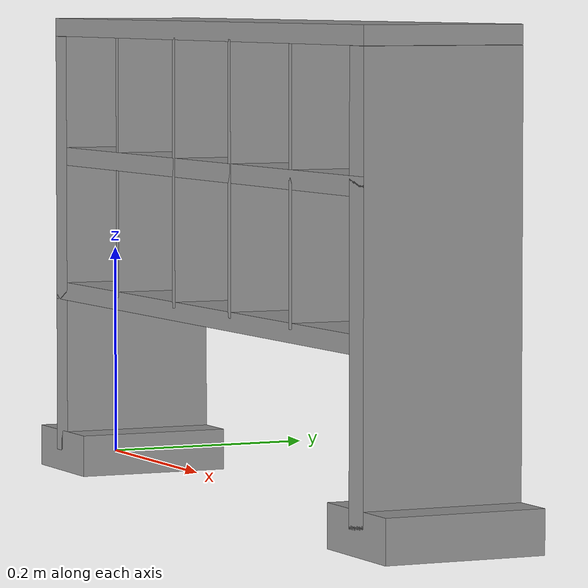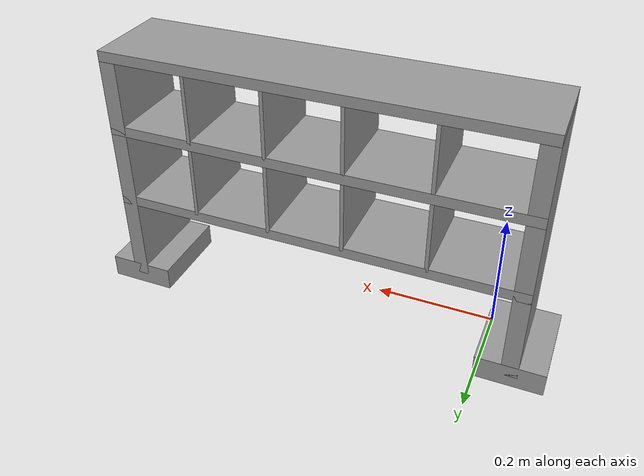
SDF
<?xml version='1.0'?>
<sdf version='1.6'>
  <model name='Rack_1.0'>
    <link name='link_0'>
      <pose frame=''>-0.051424 0.038969 -0.003686 0 -0 0</pose>
      <inertial>
        <mass>5</mass>
        <inertia>
          <ixx>0.166667</ixx>
          <ixy>0</ixy>
          <ixz>0</ixz>
          <iyy>0.166667</iyy>
          <iyz>0</iyz>
          <izz>0.166667</izz>
        </inertia>
        <pose frame=''>0 0 0 0 -0 0</pose>
      </inertial>
      <self_collide>0</self_collide>
      <kinematic>0</kinematic>
      <visual name='visual'>
        <pose frame=''>0 0 0 0 -0 0</pose>
        <geometry>
          <box>
            <size>0.1125 0.15 0.04</size>
          </box>
        </geometry>
        <material>
          <lighting>1</lighting>
          <script>
            <uri>file://media/materials/scripts/gazebo.material</uri>
            <name>Gazebo/Grey</name>
          </script>
          <shader type='pixel'>
            <normal_map>__default__</normal_map>
          </shader>
          <ambient>0 0 0 1</ambient>
          <diffuse>0.7 0.7 0.7 1</diffuse>
          <specular>0.01 0.01 0.01 1</specular>
          <emissive>0 0 0 1</emissive>
        </material>
        <transparency>0</transparency>
        <cast_shadows>1</cast_shadows>
      </visual>
      <collision name='collision'>
        <laser_retro>0</laser_retro>
        <max_contacts>10</max_contacts>
        <pose frame=''>0 0 0 0 -0 0</pose>
        <geometry>
          <box>
            <size>0.1125 0.15 0.04</size>
          </box>
        </geometry>
        <surface>
          <friction>
            <ode>
              <mu>1</mu>
              <mu2>1</mu2>
              <fdir1>0 0 0</fdir1>
              <slip1>0</slip1>
              <slip2>0</slip2>
            </ode>
            <torsional>
              <coefficient>1</coefficient>
              <patch_radius>0</patch_radius>
              <surface_radius>0</surface_radius>
              <use_patch_radius>1</use_patch_radius>
              <ode>
                <slip>0</slip>
              </ode>
            </torsional>
          </friction>
          <bounce>
            <restitution_coefficient>0</restitution_coefficient>
            <threshold>1e+06</threshold>
          </bounce>
          <contact>
            <collide_without_contact>0</collide_without_contact>
            <collide_without_contact_bitmask>1</collide_without_contact_bitmask>
            <collide_bitmask>1</collide_bitmask>
            <ode>
              <soft_cfm>0</soft_cfm>
              <soft_erp>0.2</soft_erp>
              <kp>1e+13</kp>
              <kd>1</kd>
              <max_vel>0.01</max_vel>
              <min_depth>0</min_depth>
            </ode>
            <bullet>
              <split_impulse>1</split_impulse>
              <split_impulse_penetration_threshold>-0.01</split_impulse_penetration_threshold>
              <soft_cfm>0</soft_cfm>
              <soft_erp>0.2</soft_erp>
              <kp>1e+13</kp>
              <kd>1</kd>
            </bullet>
          </contact>
        </surface>
      </collision>
    </link>
    <link name='link_0_clone'>
      <pose frame=''>0.617326 0.038969 -0.003686 0 -0 0</pose>
      <inertial>
        <mass>5</mass>
        <inertia>
          <ixx>0.166667</ixx>
          <ixy>0</ixy>
          <ixz>0</ixz>
          <iyy>0.166667</iyy>
          <iyz>0</iyz>
          <izz>0.166667</izz>
        </inertia>
        <pose frame=''>0 0 0 0 -0 0</pose>
      </inertial>
      <self_collide>0</self_collide>
      <kinematic>0</kinematic>
      <visual name='visual'>
        <pose frame=''>0 0 0 0 -0 0</pose>
        <geometry>
          <box>
            <size>0.1125 0.15 0.04</size>
          </box>
        </geometry>
        <material>
          <lighting>1</lighting>
          <script>
            <uri>file://media/materials/scripts/gazebo.material</uri>
            <name>Gazebo/Grey</name>
          </script>
          <shader type='pixel'>
            <normal_map>__default__</normal_map>
          </shader>
          <ambient>0 0 0 1</ambient>
          <diffuse>0.7 0.7 0.7 1</diffuse>
          <specular>0.01 0.01 0.01 1</specular>
          <emissive>0 0 0 1</emissive>
        </material>
        <transparency>0</transparency>
        <cast_shadows>1</cast_shadows>
      </visual>
      <collision name='collision'>
        <laser_retro>0</laser_retro>
        <max_contacts>10</max_contacts>
        <pose frame=''>0 0 0 0 -0 0</pose>
        <geometry>
          <box>
            <size>0.1125 0.15 0.04</size>
          </box>
        </geometry>
        <surface>
          <friction>
            <ode>
              <mu>1</mu>
              <mu2>1</mu2>
              <fdir1>0 0 0</fdir1>
              <slip1>0</slip1>
              <slip2>0</slip2>
            </ode>
            <torsional>
              <coefficient>1</coefficient>
              <patch_radius>0</patch_radius>
              <surface_radius>0</surface_radius>
              <use_patch_radius>1</use_patch_radius>
              <ode>
                <slip>0</slip>
              </ode>
            </torsional>
          </friction>
          <bounce>
            <restitution_coefficient>0</restitution_coefficient>
            <threshold>1e+06</threshold>
          </bounce>
          <contact>
            <collide_without_contact>0</collide_without_contact>
            <collide_without_contact_bitmask>1</collide_without_contact_bitmask>
            <collide_bitmask>1</collide_bitmask>
            <ode>
              <soft_cfm>0</soft_cfm>
              <soft_erp>0.2</soft_erp>
              <kp>1e+13</kp>
              <kd>1</kd>
              <max_vel>0.01</max_vel>
              <min_depth>0</min_depth>
            </ode>
            <bullet>
              <split_impulse>1</split_impulse>
              <split_impulse_penetration_threshold>-0.01</split_impulse_penetration_threshold>
              <soft_cfm>0</soft_cfm>
              <soft_erp>0.2</soft_erp>
              <kp>1e+13</kp>
              <kd>1</kd>
            </bullet>
          </contact>
        </surface>
      </collision>
    </link>
    <link name='link_0_clone_0'>
      <pose frame=''>0.282951 0.038969 0.415314 0 -0 0</pose>
      <inertial>
        <mass>1</mass>
        <inertia>
          <ixx>0.166667</ixx>
          <ixy>0</ixy>
          <ixz>0</ixz>
          <iyy>0.166667</iyy>
          <iyz>0</iyz>
          <izz>0.166667</izz>
        </inertia>
        <pose frame=''>0 0 0 0 -0 0</pose>
      </inertial>
      <self_collide>0</self_collide>
      <kinematic>0</kinematic>
      <visual name='visual'>
        <pose frame=''>0 0 0 0 -0 0</pose>
        <geometry>
          <box>
            <size>0.696 0.15 0.0175</size>
          </box>
        </geometry>
        <material>
          <lighting>1</lighting>
          <script>
            <uri>file://media/materials/scripts/gazebo.material</uri>
            <name>Gazebo/Grey</name>
          </script>
          <shader type='pixel'>
            <normal_map>__default__</normal_map>
          </shader>
          <ambient>0 0 0 1</ambient>
          <diffuse>0.7 0.7 0.7 1</diffuse>
          <specular>0.01 0.01 0.01 1</specular>
          <emissive>0 0 0 1</emissive>
        </material>
        <transparency>0</transparency>
        <cast_shadows>1</cast_shadows>
      </visual>
      <collision name='collision'>
        <laser_retro>0</laser_retro>
        <max_contacts>10</max_contacts>
        <pose frame=''>0 0 0 0 -0 0</pose>
        <geometry>
          <box>
            <size>0.696 0.15 0.0175</size>
          </box>
        </geometry>
        <surface>
          <friction>
            <ode>
              <mu>1</mu>
              <mu2>1</mu2>
              <fdir1>0 0 0</fdir1>
              <slip1>0</slip1>
              <slip2>0</slip2>
            </ode>
            <torsional>
              <coefficient>1</coefficient>
              <patch_radius>0</patch_radius>
              <surface_radius>0</surface_radius>
              <use_patch_radius>1</use_patch_radius>
              <ode>
                <slip>0</slip>
              </ode>
            </torsional>
          </friction>
          <bounce>
            <restitution_coefficient>0</restitution_coefficient>
            <threshold>1e+06</threshold>
          </bounce>
          <contact>
            <collide_without_contact>0</collide_without_contact>
            <collide_without_contact_bitmask>1</collide_without_contact_bitmask>
            <collide_bitmask>1</collide_bitmask>
            <ode>
              <soft_cfm>0</soft_cfm>
              <soft_erp>0.2</soft_erp>
              <kp>1e+13</kp>
              <kd>1</kd>
              <max_vel>0.01</max_vel>
              <min_depth>0</min_depth>
            </ode>
            <bullet>
              <split_impulse>1</split_impulse>
              <split_impulse_penetration_threshold>-0.01</split_impulse_penetration_threshold>
              <soft_cfm>0</soft_cfm>
              <soft_erp>0.2</soft_erp>
              <kp>1e+13</kp>
              <kd>1</kd>
            </bullet>
          </contact>
        </surface>
      </collision>
    </link>
    <link name='link_0_clone_0_clone'>
      <pose frame=''>0.282951 0.038969 0.288714 0 -0 0</pose>
      <inertial>
        <mass>1</mass>
        <inertia>
          <ixx>0.166667</ixx>
          <ixy>0</ixy>
          <ixz>0</ixz>
          <iyy>0.166667</iyy>
          <iyz>0</iyz>
          <izz>0.166667</izz>
        </inertia>
        <pose frame=''>0 0 0 0 -0 0</pose>
      </inertial>
      <self_collide>0</self_collide>
      <kinematic>0</kinematic>
      <visual name='visual'>
        <pose frame=''>0 0 0 0 -0 0</pose>
        <geometry>
          <box>
            <size>0.696 0.15 0.0175</size>
          </box>
        </geometry>
        <material>
          <lighting>1</lighting>
          <script>
            <uri>file://media/materials/scripts/gazebo.material</uri>
            <name>Gazebo/Grey</name>
          </script>
          <shader type='pixel'>
            <normal_map>__default__</normal_map>
          </shader>
          <ambient>0 0 0 1</ambient>
          <diffuse>0.7 0.7 0.7 1</diffuse>
          <specular>0.01 0.01 0.01 1</specular>
          <emissive>0 0 0 1</emissive>
        </material>
        <transparency>0</transparency>
        <cast_shadows>1</cast_shadows>
      </visual>
      <collision name='collision'>
        <laser_retro>0</laser_retro>
        <max_contacts>10</max_contacts>
        <pose frame=''>0 0 0 0 -0 0</pose>
        <geometry>
          <box>
            <size>0.696 0.15 0.0175</size>
          </box>
        </geometry>
        <surface>
          <friction>
            <ode>
              <mu>1</mu>
              <mu2>1</mu2>
              <fdir1>0 0 0</fdir1>
              <slip1>0</slip1>
              <slip2>0</slip2>
            </ode>
            <torsional>
              <coefficient>1</coefficient>
              <patch_radius>0</patch_radius>
              <surface_radius>0</surface_radius>
              <use_patch_radius>1</use_patch_radius>
              <ode>
                <slip>0</slip>
              </ode>
            </torsional>
          </friction>
          <bounce>
            <restitution_coefficient>0</restitution_coefficient>
            <threshold>1e+06</threshold>
          </bounce>
          <contact>
            <collide_without_contact>0</collide_without_contact>
            <collide_without_contact_bitmask>1</collide_without_contact_bitmask>
            <collide_bitmask>1</collide_bitmask>
            <ode>
              <soft_cfm>0</soft_cfm>
              <soft_erp>0.2</soft_erp>
              <kp>1e+13</kp>
              <kd>1</kd>
              <max_vel>0.01</max_vel>
              <min_depth>0</min_depth>
            </ode>
            <bullet>
              <split_impulse>1</split_impulse>
              <split_impulse_penetration_threshold>-0.01</split_impulse_penetration_threshold>
              <soft_cfm>0</soft_cfm>
              <soft_erp>0.2</soft_erp>
              <kp>1e+13</kp>
              <kd>1</kd>
            </bullet>
          </contact>
        </surface>
      </collision>
    </link>
    <link name='link_0_clone_0_clone_0'>
      <pose frame=''>0.282951 0.038969 0.155414 0 -0 0</pose>
      <inertial>
        <mass>1</mass>
        <inertia>
          <ixx>0.166667</ixx>
          <ixy>0</ixy>
          <ixz>0</ixz>
          <iyy>0.166667</iyy>
          <iyz>0</iyz>
          <izz>0.166667</izz>
        </inertia>
        <pose frame=''>0 0 0 0 -0 0</pose>
      </inertial>
      <self_collide>0</self_collide>
      <kinematic>0</kinematic>
      <visual name='visual'>
        <pose frame=''>0 0 0 0 -0 0</pose>
        <geometry>
          <box>
            <size>0.696 0.15 0.0175</size>
          </box>
        </geometry>
        <material>
          <lighting>1</lighting>
          <script>
            <uri>file://media/materials/scripts/gazebo.material</uri>
            <name>Gazebo/Grey</name>
          </script>
          <shader type='pixel'>
            <normal_map>__default__</normal_map>
          </shader>
          <ambient>0 0 0 1</ambient>
          <diffuse>0.7 0.7 0.7 1</diffuse>
          <specular>0.01 0.01 0.01 1</specular>
          <emissive>0 0 0 1</emissive>
        </material>
        <transparency>0</transparency>
        <cast_shadows>1</cast_shadows>
      </visual>
      <collision name='collision'>
        <laser_retro>0</laser_retro>
        <max_contacts>10</max_contacts>
        <pose frame=''>0 0 0 0 -0 0</pose>
        <geometry>
          <box>
            <size>0.696 0.15 0.0175</size>
          </box>
        </geometry>
        <surface>
          <friction>
            <ode>
              <mu>1</mu>
              <mu2>1</mu2>
              <fdir1>0 0 0</fdir1>
              <slip1>0</slip1>
              <slip2>0</slip2>
            </ode>
            <torsional>
              <coefficient>1</coefficient>
              <patch_radius>0</patch_radius>
              <surface_radius>0</surface_radius>
              <use_patch_radius>1</use_patch_radius>
              <ode>
                <slip>0</slip>
              </ode>
            </torsional>
          </friction>
          <bounce>
            <restitution_coefficient>0</restitution_coefficient>
            <threshold>1e+06</threshold>
          </bounce>
          <contact>
            <collide_without_contact>0</collide_without_contact>
            <collide_without_contact_bitmask>1</collide_without_contact_bitmask>
            <collide_bitmask>1</collide_bitmask>
            <ode>
              <soft_cfm>0</soft_cfm>
              <soft_erp>0.2</soft_erp>
              <kp>1e+13</kp>
              <kd>1</kd>
              <max_vel>0.01</max_vel>
              <min_depth>0</min_depth>
            </ode>
            <bullet>
              <split_impulse>1</split_impulse>
              <split_impulse_penetration_threshold>-0.01</split_impulse_penetration_threshold>
              <soft_cfm>0</soft_cfm>
              <soft_erp>0.2</soft_erp>
              <kp>1e+13</kp>
              <kd>1</kd>
            </bullet>
          </contact>
        </surface>
      </collision>
    </link>
    <link name='link_1'>
      <pose frame=''>-0.051424 0.038969 0.201313 0 -0 0</pose>
      <inertial>
        <mass>1</mass>
        <inertia>
          <ixx>0.166667</ixx>
          <ixy>0</ixy>
          <ixz>0</ixz>
          <iyy>0.166667</iyy>
          <iyz>0</iyz>
          <izz>0.166667</izz>
        </inertia>
        <pose frame=''>0 0 0 0 -0 0</pose>
      </inertial>
      <self_collide>0</self_collide>
      <kinematic>0</kinematic>
      <visual name='visual'>
        <pose frame=''>0 0 0 0 -0 0</pose>
        <geometry>
          <box>
            <size>0.0275 0.15 0.41</size>
          </box>
        </geometry>
        <material>
          <lighting>1</lighting>
          <script>
            <uri>file://media/materials/scripts/gazebo.material</uri>
            <name>Gazebo/Grey</name>
          </script>
          <shader type='pixel'>
            <normal_map>__default__</normal_map>
          </shader>
          <ambient>0 0 0 1</ambient>
          <diffuse>0.7 0.7 0.7 1</diffuse>
          <specular>0.01 0.01 0.01 1</specular>
          <emissive>0 0 0 1</emissive>
        </material>
        <transparency>0</transparency>
        <cast_shadows>1</cast_shadows>
      </visual>
      <collision name='collision'>
        <laser_retro>0</laser_retro>
        <max_contacts>10</max_contacts>
        <pose frame=''>0 0 0 0 -0 0</pose>
        <geometry>
          <box>
            <size>0.0275 0.15 0.41</size>
          </box>
        </geometry>
        <surface>
          <friction>
            <ode>
              <mu>1</mu>
              <mu2>1</mu2>
              <fdir1>0 0 0</fdir1>
              <slip1>0</slip1>
              <slip2>0</slip2>
            </ode>
            <torsional>
              <coefficient>1</coefficient>
              <patch_radius>0</patch_radius>
              <surface_radius>0</surface_radius>
              <use_patch_radius>1</use_patch_radius>
              <ode>
                <slip>0</slip>
              </ode>
            </torsional>
          </friction>
          <bounce>
            <restitution_coefficient>0</restitution_coefficient>
            <threshold>1e+06</threshold>
          </bounce>
          <contact>
            <collide_without_contact>0</collide_without_contact>
            <collide_without_contact_bitmask>1</collide_without_contact_bitmask>
            <collide_bitmask>1</collide_bitmask>
            <ode>
              <soft_cfm>0</soft_cfm>
              <soft_erp>0.2</soft_erp>
              <kp>1e+13</kp>
              <kd>1</kd>
              <max_vel>0.01</max_vel>
              <min_depth>0</min_depth>
            </ode>
            <bullet>
              <split_impulse>1</split_impulse>
              <split_impulse_penetration_threshold>-0.01</split_impulse_penetration_threshold>
              <soft_cfm>0</soft_cfm>
              <soft_erp>0.2</soft_erp>
              <kp>1e+13</kp>
              <kd>1</kd>
            </bullet>
          </contact>
        </surface>
      </collision>
    </link>
    <link name='link_1_clone'>
      <pose frame=''>0.617326 0.038969 0.201314 0 -0 0</pose>
      <inertial>
        <mass>1</mass>
        <inertia>
          <ixx>0.166667</ixx>
          <ixy>0</ixy>
          <ixz>0</ixz>
          <iyy>0.166667</iyy>
          <iyz>0</iyz>
          <izz>0.166667</izz>
        </inertia>
        <pose frame=''>0 0 0 0 -0 0</pose>
      </inertial>
      <self_collide>0</self_collide>
      <kinematic>0</kinematic>
      <visual name='visual'>
        <pose frame=''>0 0 0 0 -0 0</pose>
        <geometry>
          <box>
            <size>0.0275 0.15 0.41</size>
          </box>
        </geometry>
        <material>
          <lighting>1</lighting>
          <script>
            <uri>file://media/materials/scripts/gazebo.material</uri>
            <name>Gazebo/Grey</name>
          </script>
          <shader type='pixel'>
            <normal_map>__default__</normal_map>
          </shader>
          <ambient>0 0 0 1</ambient>
          <diffuse>0.7 0.7 0.7 1</diffuse>
          <specular>0.01 0.01 0.01 1</specular>
          <emissive>0 0 0 1</emissive>
        </material>
        <transparency>0</transparency>
        <cast_shadows>1</cast_shadows>
      </visual>
      <collision name='collision'>
        <laser_retro>0</laser_retro>
        <max_contacts>10</max_contacts>
        <pose frame=''>0 0 0 0 -0 0</pose>
        <geometry>
          <box>
            <size>0.0275 0.15 0.41</size>
          </box>
        </geometry>
        <surface>
          <friction>
            <ode>
              <mu>1</mu>
              <mu2>1</mu2>
              <fdir1>0 0 0</fdir1>
              <slip1>0</slip1>
              <slip2>0</slip2>
            </ode>
            <torsional>
              <coefficient>1</coefficient>
              <patch_radius>0</patch_radius>
              <surface_radius>0</surface_radius>
              <use_patch_radius>1</use_patch_radius>
              <ode>
                <slip>0</slip>
              </ode>
            </torsional>
          </friction>
          <bounce>
            <restitution_coefficient>0</restitution_coefficient>
            <threshold>1e+06</threshold>
          </bounce>
          <contact>
            <collide_without_contact>0</collide_without_contact>
            <collide_without_contact_bitmask>1</collide_without_contact_bitmask>
            <collide_bitmask>1</collide_bitmask>
            <ode>
              <soft_cfm>0</soft_cfm>
              <soft_erp>0.2</soft_erp>
              <kp>1e+13</kp>
              <kd>1</kd>
              <max_vel>0.01</max_vel>
              <min_depth>0</min_depth>
            </ode>
            <bullet>
              <split_impulse>1</split_impulse>
              <split_impulse_penetration_threshold>-0.01</split_impulse_penetration_threshold>
              <soft_cfm>0</soft_cfm>
              <soft_erp>0.2</soft_erp>
              <kp>1e+13</kp>
              <kd>1</kd>
            </bullet>
          </contact>
        </surface>
      </collision>
    </link>
    <link name='link_6'>
      <pose frame=''>0.093076 0.038969 0.28345 0 -0 0</pose>
      <inertial>
        <mass>1</mass>
        <inertia>
          <ixx>0.166667</ixx>
          <ixy>0</ixy>
          <ixz>0</ixz>
          <iyy>0.166667</iyy>
          <iyz>0</iyz>
          <izz>0.166667</izz>
        </inertia>
        <pose frame=''>0 0 0 0 -0 0</pose>
      </inertial>
      <self_collide>0</self_collide>
      <kinematic>0</kinematic>
      <visual name='visual'>
        <pose frame=''>0 0 0 0 -0 0</pose>
        <geometry>
          <box>
            <size>0.006 0.15 0.25</size>
          </box>
        </geometry>
        <material>
          <lighting>1</lighting>
          <script>
            <uri>file://media/materials/scripts/gazebo.material</uri>
            <name>Gazebo/Grey</name>
          </script>
          <shader type='pixel'>
            <normal_map>__default__</normal_map>
          </shader>
          <ambient>1 1 1 1</ambient>
          <diffuse>0.7 0.7 0.7 1</diffuse>
          <specular>0.01 0.01 0.01 1</specular>
          <emissive>0 0 0 1</emissive>
        </material>
        <transparency>0</transparency>
        <cast_shadows>1</cast_shadows>
      </visual>
      <collision name='collision'>
        <laser_retro>0</laser_retro>
        <max_contacts>10</max_contacts>
        <pose frame=''>0 0 0 0 -0 0</pose>
        <geometry>
          <box>
            <size>0.006 0.15 0.25</size>
          </box>
        </geometry>
        <surface>
          <friction>
            <ode>
              <mu>1</mu>
              <mu2>1</mu2>
              <fdir1>0 0 0</fdir1>
              <slip1>0</slip1>
              <slip2>0</slip2>
            </ode>
            <torsional>
              <coefficient>1</coefficient>
              <patch_radius>0</patch_radius>
              <surface_radius>0</surface_radius>
              <use_patch_radius>1</use_patch_radius>
              <ode>
                <slip>0</slip>
              </ode>
            </torsional>
          </friction>
          <bounce>
            <restitution_coefficient>0</restitution_coefficient>
            <threshold>1e+06</threshold>
          </bounce>
          <contact>
            <collide_without_contact>0</collide_without_contact>
            <collide_without_contact_bitmask>1</collide_without_contact_bitmask>
            <collide_bitmask>1</collide_bitmask>
            <ode>
              <soft_cfm>0</soft_cfm>
              <soft_erp>0.2</soft_erp>
              <kp>1e+13</kp>
              <kd>1</kd>
              <max_vel>0.01</max_vel>
              <min_depth>0</min_depth>
            </ode>
            <bullet>
              <split_impulse>1</split_impulse>
              <split_impulse_penetration_threshold>-0.01</split_impulse_penetration_threshold>
              <soft_cfm>0</soft_cfm>
              <soft_erp>0.2</soft_erp>
              <kp>1e+13</kp>
              <kd>1</kd>
            </bullet>
          </contact>
        </surface>
      </collision>
    </link>
    <link name='link_6_clone'>
      <pose frame=''>0.229217 0.038969 0.28345 0 -0 0</pose>
      <inertial>
        <mass>1</mass>
        <inertia>
          <ixx>0.166667</ixx>
          <ixy>0</ixy>
          <ixz>0</ixz>
          <iyy>0.166667</iyy>
          <iyz>0</iyz>
          <izz>0.166667</izz>
        </inertia>
        <pose frame=''>0 0 0 0 -0 0</pose>
      </inertial>
      <self_collide>0</self_collide>
      <kinematic>0</kinematic>
      <visual name='visual'>
        <pose frame=''>0 0 0 0 -0 0</pose>
        <geometry>
          <box>
            <size>0.006 0.15 0.25</size>
          </box>
        </geometry>
        <material>
          <lighting>1</lighting>
          <script>
            <uri>file://media/materials/scripts/gazebo.material</uri>
            <name>Gazebo/Grey</name>
          </script>
          <shader type='pixel'>
            <normal_map>__default__</normal_map>
          </shader>
          <ambient>1 1 1 1</ambient>
          <diffuse>0.7 0.7 0.7 1</diffuse>
          <specular>0.01 0.01 0.01 1</specular>
          <emissive>0 0 0 1</emissive>
        </material>
        <transparency>0</transparency>
        <cast_shadows>1</cast_shadows>
      </visual>
      <collision name='collision'>
        <laser_retro>0</laser_retro>
        <max_contacts>10</max_contacts>
        <pose frame=''>0 0 0 0 -0 0</pose>
        <geometry>
          <box>
            <size>0.006 0.15 0.25</size>
          </box>
        </geometry>
        <surface>
          <friction>
            <ode>
              <mu>1</mu>
              <mu2>1</mu2>
              <fdir1>0 0 0</fdir1>
              <slip1>0</slip1>
              <slip2>0</slip2>
            </ode>
            <torsional>
              <coefficient>1</coefficient>
              <patch_radius>0</patch_radius>
              <surface_radius>0</surface_radius>
              <use_patch_radius>1</use_patch_radius>
              <ode>
                <slip>0</slip>
              </ode>
            </torsional>
          </friction>
          <bounce>
            <restitution_coefficient>0</restitution_coefficient>
            <threshold>1e+06</threshold>
          </bounce>
          <contact>
            <collide_without_contact>0</collide_without_contact>
            <collide_without_contact_bitmask>1</collide_without_contact_bitmask>
            <collide_bitmask>1</collide_bitmask>
            <ode>
              <soft_cfm>0</soft_cfm>
              <soft_erp>0.2</soft_erp>
              <kp>1e+13</kp>
              <kd>1</kd>
              <max_vel>0.01</max_vel>
              <min_depth>0</min_depth>
            </ode>
            <bullet>
              <split_impulse>1</split_impulse>
              <split_impulse_penetration_threshold>-0.01</split_impulse_penetration_threshold>
              <soft_cfm>0</soft_cfm>
              <soft_erp>0.2</soft_erp>
              <kp>1e+13</kp>
              <kd>1</kd>
            </bullet>
          </contact>
        </surface>
      </collision>
    </link>
    <link name='link_6_clone_0'>
      <pose frame=''>0.355533 0.038969 0.28345 0 -0 0</pose>
      <inertial>
        <mass>1</mass>
        <inertia>
          <ixx>0.166667</ixx>
          <ixy>0</ixy>
          <ixz>0</ixz>
          <iyy>0.166667</iyy>
          <iyz>0</iyz>
          <izz>0.166667</izz>
        </inertia>
        <pose frame=''>0 0 0 0 -0 0</pose>
      </inertial>
      <self_collide>0</self_collide>
      <kinematic>0</kinematic>
      <visual name='visual'>
        <pose frame=''>0 0 0 0 -0 0</pose>
        <geometry>
          <box>
            <size>0.006 0.15 0.25</size>
          </box>
        </geometry>
        <material>
          <lighting>1</lighting>
          <script>
            <uri>file://media/materials/scripts/gazebo.material</uri>
            <name>Gazebo/Grey</name>
          </script>
          <shader type='pixel'>
            <normal_map>__default__</normal_map>
          </shader>
          <ambient>1 1 1 1</ambient>
          <diffuse>0.7 0.7 0.7 1</diffuse>
          <specular>0.01 0.01 0.01 1</specular>
          <emissive>0 0 0 1</emissive>
        </material>
        <transparency>0</transparency>
        <cast_shadows>1</cast_shadows>
      </visual>
      <collision name='collision'>
        <laser_retro>0</laser_retro>
        <max_contacts>10</max_contacts>
        <pose frame=''>0 0 0 0 -0 0</pose>
        <geometry>
          <box>
            <size>0.006 0.15 0.25</size>
          </box>
        </geometry>
        <surface>
          <friction>
            <ode>
              <mu>1</mu>
              <mu2>1</mu2>
              <fdir1>0 0 0</fdir1>
              <slip1>0</slip1>
              <slip2>0</slip2>
            </ode>
            <torsional>
              <coefficient>1</coefficient>
              <patch_radius>0</patch_radius>
              <surface_radius>0</surface_radius>
              <use_patch_radius>1</use_patch_radius>
              <ode>
                <slip>0</slip>
              </ode>
            </torsional>
          </friction>
          <bounce>
            <restitution_coefficient>0</restitution_coefficient>
            <threshold>1e+06</threshold>
          </bounce>
          <contact>
            <collide_without_contact>0</collide_without_contact>
            <collide_without_contact_bitmask>1</collide_without_contact_bitmask>
            <collide_bitmask>1</collide_bitmask>
            <ode>
              <soft_cfm>0</soft_cfm>
              <soft_erp>0.2</soft_erp>
              <kp>1e+13</kp>
              <kd>1</kd>
              <max_vel>0.01</max_vel>
              <min_depth>0</min_depth>
            </ode>
            <bullet>
              <split_impulse>1</split_impulse>
              <split_impulse_penetration_threshold>-0.01</split_impulse_penetration_threshold>
              <soft_cfm>0</soft_cfm>
              <soft_erp>0.2</soft_erp>
              <kp>1e+13</kp>
              <kd>1</kd>
            </bullet>
          </contact>
        </surface>
      </collision>
    </link>
    <link name='link_6_clone_1'>
      <pose frame=''>0.485533 0.038969 0.28345 0 -0 0</pose>
      <inertial>
        <mass>1</mass>
        <inertia>
          <ixx>0.166667</ixx>
          <ixy>0</ixy>
          <ixz>0</ixz>
          <iyy>0.166667</iyy>
          <iyz>0</iyz>
          <izz>0.166667</izz>
        </inertia>
        <pose frame=''>0 0 0 0 -0 0</pose>
      </inertial>
      <self_collide>0</self_collide>
      <kinematic>0</kinematic>
      <visual name='visual'>
        <pose frame=''>0 0 0 0 -0 0</pose>
        <geometry>
          <box>
            <size>0.006 0.15 0.25</size>
          </box>
        </geometry>
        <material>
          <lighting>1</lighting>
          <script>
            <uri>file://media/materials/scripts/gazebo.material</uri>
            <name>Gazebo/Grey</name>
          </script>
          <shader type='pixel'>
            <normal_map>__default__</normal_map>
          </shader>
          <ambient>1 1 1 1</ambient>
          <diffuse>0.7 0.7 0.7 1</diffuse>
          <specular>0.01 0.01 0.01 1</specular>
          <emissive>0 0 0 1</emissive>
        </material>
        <transparency>0</transparency>
        <cast_shadows>1</cast_shadows>
      </visual>
      <collision name='collision'>
        <laser_retro>0</laser_retro>
        <max_contacts>10</max_contacts>
        <pose frame=''>0 0 0 0 -0 0</pose>
        <geometry>
          <box>
            <size>0.006 0.15 0.25</size>
          </box>
        </geometry>
        <surface>
          <friction>
            <ode>
              <mu>1</mu>
              <mu2>1</mu2>
              <fdir1>0 0 0</fdir1>
              <slip1>0</slip1>
              <slip2>0</slip2>
            </ode>
            <torsional>
              <coefficient>1</coefficient>
              <patch_radius>0</patch_radius>
              <surface_radius>0</surface_radius>
              <use_patch_radius>1</use_patch_radius>
              <ode>
                <slip>0</slip>
              </ode>
            </torsional>
          </friction>
          <bounce>
            <restitution_coefficient>0</restitution_coefficient>
            <threshold>1e+06</threshold>
          </bounce>
          <contact>
            <collide_without_contact>0</collide_without_contact>
            <collide_without_contact_bitmask>1</collide_without_contact_bitmask>
            <collide_bitmask>1</collide_bitmask>
            <ode>
              <soft_cfm>0</soft_cfm>
              <soft_erp>0.2</soft_erp>
              <kp>1e+13</kp>
              <kd>1</kd>
              <max_vel>0.01</max_vel>
              <min_depth>0</min_depth>
            </ode>
            <bullet>
              <split_impulse>1</split_impulse>
              <split_impulse_penetration_threshold>-0.01</split_impulse_penetration_threshold>
              <soft_cfm>0</soft_cfm>
              <soft_erp>0.2</soft_erp>
              <kp>1e+13</kp>
              <kd>1</kd>
            </bullet>
          </contact>
        </surface>
      </collision>
    </link>
    <joint name='link_0_JOINT_1' type='fixed'>
      <parent>link_0</parent>
      <child>link_1</child>
      <pose frame=''>0 0 0 0 -0 0</pose>
      <physics>
        <ode>
          <limit>
            <cfm>0</cfm>
            <erp>0.2</erp>
          </limit>
          <suspension>
            <cfm>0</cfm>
            <erp>0.2</erp>
          </suspension>
        </ode>
      </physics>
    </joint>
    <joint name='link_0_clone_0_JOINT_2' type='fixed'>
      <parent>link_0_clone_0</parent>
      <child>link_1_clone</child>
      <pose frame=''>0 0 0 0 -0 0</pose>
      <physics>
        <ode>
          <limit>
            <cfm>0</cfm>
            <erp>0.2</erp>
          </limit>
          <suspension>
            <cfm>0</cfm>
            <erp>0.2</erp>
          </suspension>
        </ode>
      </physics>
    </joint>
    <joint name='link_0_clone_0_clone_0_JOINT_6' type='fixed'>
      <parent>link_0_clone_0_clone_0</parent>
      <child>link_1_clone</child>
      <pose frame=''>0 0 0 0 -0 0</pose>
      <physics>
        <ode>
          <limit>
            <cfm>0</cfm>
            <erp>0.2</erp>
          </limit>
          <suspension>
            <cfm>0</cfm>
            <erp>0.2</erp>
          </suspension>
        </ode>
      </physics>
    </joint>
    <joint name='link_0_clone_0_clone_0_JOINT_7' type='fixed'>
      <parent>link_0_clone_0_clone_0</parent>
      <child>link_1</child>
      <pose frame=''>0 0 0 0 -0 0</pose>
      <physics>
        <ode>
          <limit>
            <cfm>0</cfm>
            <erp>0.2</erp>
          </limit>
          <suspension>
            <cfm>0</cfm>
            <erp>0.2</erp>
          </suspension>
        </ode>
      </physics>
    </joint>
    <joint name='link_0_clone_0_clone_JOINT_4' type='fixed'>
      <parent>link_0_clone_0_clone</parent>
      <child>link_1_clone</child>
      <pose frame=''>0 0 0 0 -0 0</pose>
      <physics>
        <ode>
          <limit>
            <cfm>0</cfm>
            <erp>0.2</erp>
          </limit>
          <suspension>
            <cfm>0</cfm>
            <erp>0.2</erp>
          </suspension>
        </ode>
      </physics>
    </joint>
    <joint name='link_0_clone_0_clone_JOINT_5' type='fixed'>
      <parent>link_0_clone_0_clone</parent>
      <child>link_1</child>
      <pose frame=''>0 0 0 0 -0 0</pose>
      <physics>
        <ode>
          <limit>
            <cfm>0</cfm>
            <erp>0.2</erp>
          </limit>
          <suspension>
            <cfm>0</cfm>
            <erp>0.2</erp>
          </suspension>
        </ode>
      </physics>
    </joint>
    <joint name='link_0_clone_JOINT_0' type='fixed'>
      <parent>link_0_clone</parent>
      <child>link_1_clone</child>
      <pose frame=''>0 0 0 0 -0 0</pose>
      <physics>
        <ode>
          <limit>
            <cfm>0</cfm>
            <erp>0.2</erp>
          </limit>
          <suspension>
            <cfm>0</cfm>
            <erp>0.2</erp>
          </suspension>
        </ode>
      </physics>
    </joint>
    <joint name='link_1_JOINT_3' type='fixed'>
      <parent>link_1</parent>
      <child>link_0_clone_0</child>
      <pose frame=''>0 0 0 0 -0 0</pose>
      <physics>
        <ode>
          <limit>
            <cfm>0</cfm>
            <erp>0.2</erp>
          </limit>
          <suspension>
            <cfm>0</cfm>
            <erp>0.2</erp>
          </suspension>
        </ode>
      </physics>
    </joint>
    <joint name='link_6_JOINT_11' type='fixed'>
      <parent>link_6</parent>
      <child>link_0_clone_0_clone_0</child>
      <pose frame=''>0 0 0 0 -0 0</pose>
      <physics>
        <ode>
          <limit>
            <cfm>0</cfm>
            <erp>0.2</erp>
          </limit>
          <suspension>
            <cfm>0</cfm>
            <erp>0.2</erp>
          </suspension>
        </ode>
      </physics>
    </joint>
    <joint name='link_6_clone_0_JOINT_9' type='fixed'>
      <parent>link_6_clone_0</parent>
      <child>link_0_clone_0_clone_0</child>
      <pose frame=''>0 0 0 0 -0 0</pose>
      <physics>
        <ode>
          <limit>
            <cfm>0</cfm>
            <erp>0.2</erp>
          </limit>
          <suspension>
            <cfm>0</cfm>
            <erp>0.2</erp>
          </suspension>
        </ode>
      </physics>
    </joint>
    <joint name='link_6_clone_1_JOINT_8' type='fixed'>
      <parent>link_6_clone_1</parent>
      <child>link_0_clone_0_clone_0</child>
      <pose frame=''>0 0 0 0 -0 0</pose>
      <physics>
        <ode>
          <limit>
            <cfm>0</cfm>
            <erp>0.2</erp>
          </limit>
          <suspension>
            <cfm>0</cfm>
            <erp>0.2</erp>
          </suspension>
        </ode>
      </physics>
    </joint>
    <joint name='link_6_clone_JOINT_10' type='fixed'>
      <parent>link_6_clone</parent>
      <child>link_0_clone_0_clone_0</child>
      <pose frame=''>0 0 0 0 -0 0</pose>
      <physics>
        <ode>
          <limit>
            <cfm>0</cfm>
            <erp>0.2</erp>
          </limit>
          <suspension>
            <cfm>0</cfm>
            <erp>0.2</erp>
          </suspension>
        </ode>
      </physics>
    </joint>
    <static>0</static>
    <allow_auto_disable>1</allow_auto_disable>
  </model>
</sdf>
